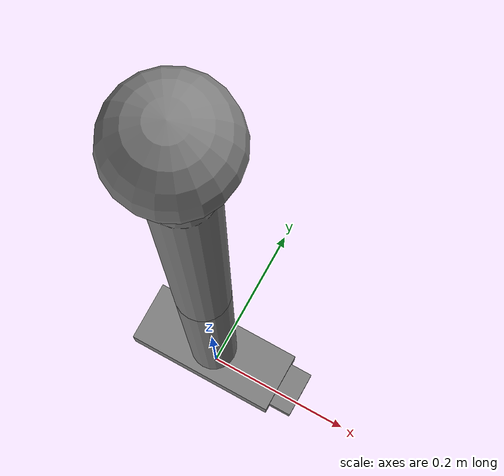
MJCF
<mujoco model="minimal_human">
  <compiler angle="radian"/>

  <default>
    <default class="muscle">
      <general ctrlrange="0 1"/>
    </default>
  </default>

  <worldbody>
    <body name="pelvis" pos="0 0 1">
      <joint name="pelvis_ty" type="slide" axis="0 0 1"/>
      <geom name="pelvis_geom" type="sphere" size="0.05"/>
      <site name="pelvis_site" pos="0 0 0"/>
      <body name="thigh" pos="0 0 -0.1">
        <joint name="hip" type="hinge" axis="0 1 0"/>
        <geom name="thigh_geom" type="capsule" fromto="0 0 0 0 0 -0.4" size="0.03"/>
        <site name="thigh_site" pos="0 0 -0.2"/>
        <body name="shank" pos="0 0 -0.4">
          <joint name="knee" type="hinge" axis="0 1 0" range="0 2"/>
          <geom name="shank_geom" type="capsule" fromto="0 0 0 0 0 -0.4" size="0.03"/>
          <site name="shank_site" pos="0 0 -0.2"/>
          <body name="foot" pos="0 0 -0.4">
            <joint name="ankle" type="hinge" axis="0 1 0"/>
            <geom name="foot_geom" type="box" size="0.1 0.04 0.02"/>
            <site name="foot_site" pos="0 0 0"/>
            <body name="toe" pos="0.1 0 0">
              <joint name="mtp" type="hinge" axis="0 1 0"/>
              <geom name="toe_geom" type="box" size="0.03 0.03 0.01"/>
            </body>
          </body>
        </body>
        <body name="pp" pos="0 0 -0.2">
          <joint name="pp_x" type="slide" axis="1 0 0"/>
          <joint name="pp_y" type="slide" axis="0 1 0"/>
          <geom name="pp_geom" type="sphere" size="0.005" mass="0.001"/>
          <site name="pp_site" pos="0 0 0"/>
        </body>
      </body>
    </body>
  </worldbody>

  <contact>
    <pair geom1="foot_geom" geom2="toe_geom"/>
    <pair geom1="pelvis_geom" geom2="shank_geom"/>
  </contact>

  <equality>
    <joint joint1="pp_x" joint2="knee" polycoef="0 1 0 0 0"/>
  </equality>

  <sensor>
    <touch name="foot_touch" site="foot_site"/>
    <jointpos name="knee_pos" joint="knee"/>
  </sensor>

  <tendon>
    <spatial name="calf_tendon" springlength="0.3" stiffness="5" damping="0.1" width="0.005">
      <site site="thigh_site"/>
      <site site="shank_site"/>
      <site site="foot_site"/>
    </spatial>
  </tendon>

  <actuator>
    <general name="calf_act" class="muscle" tendon="calf_tendon"/>
    <motor name="knee_act" joint="knee"/>
  </actuator>

  <keyframe>
    <key name="home" qpos="0.9 0.1 0.2 0.0 0.0 0.0 0.01" qvel="0 0 0 0 0 0 0"/>
  </keyframe>
</mujoco>
